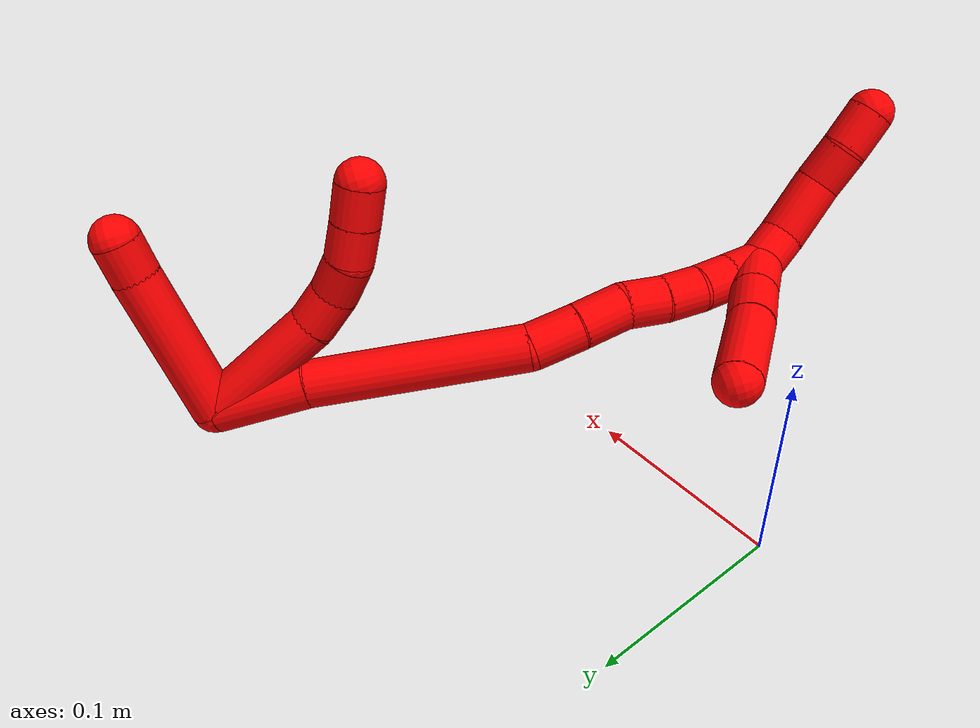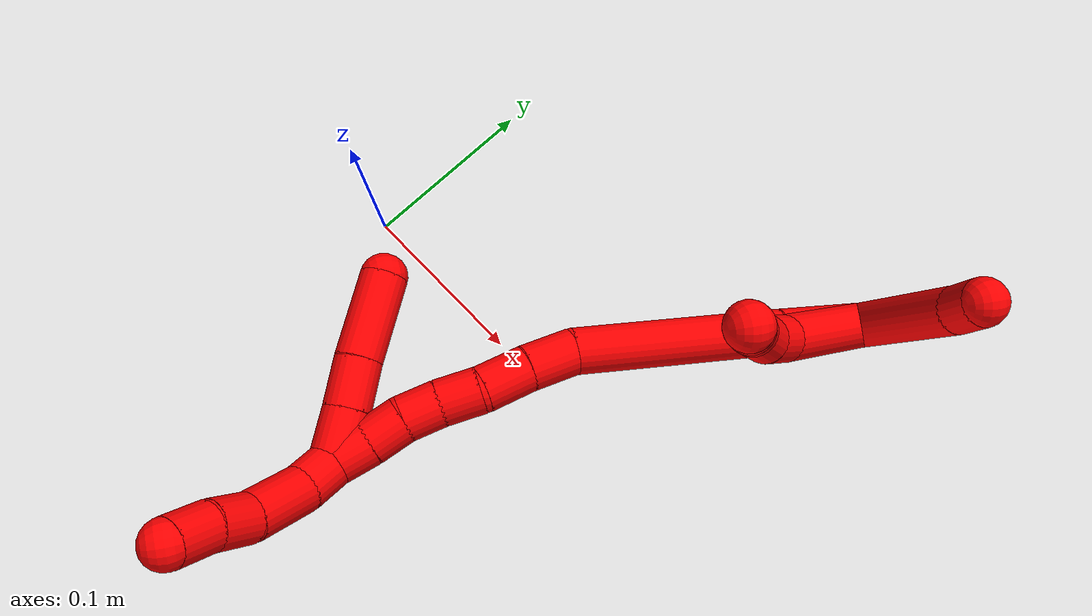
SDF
<sdf version="1.7">
 <world name="default">
  <model name="2">
   <static>0</static>
   <link name="2">
    <collision name="collision-cylinder-e_1_2_8">
     <pose>-0.010439 0.00869 -0.031183 -2.86981 -0.311944 1.71014</pose>
     <geometry><cylinder><radius>0.0125</radius><length>0.068026</length></cylinder></geometry>
     <surface>
      <friction><ode><mu>1.16</mu><mu2>1.16</mu2><slip1>0</slip1><slip2>0</slip2></ode></friction>
      <contact><ode><kp>1e+06</kp><kd>1</kd><max_vel>0</max_vel><min_depth>0.001</min_depth></ode></contact>
     </surface>
    </collision>
    <visual name="visual-cylinder-e_1_2_8">
     <pose>-0.010439 0.00869 -0.031183 -2.86981 -0.311944 1.71014</pose>
     <geometry><cylinder><radius>0.0125</radius><length>0.068026</length></cylinder></geometry>
     <material><ambient>1 0 0 1</ambient></material>
    </visual>
    <collision name="collision-cylinder-e_2_8_9">
     <pose>-0.025429 0.02194 -0.070787 -2.64534 -0.443654 1.45478</pose>
     <geometry><cylinder><radius>0.0125</radius><length>0.021205</length></cylinder></geometry>
     <surface>
      <friction><ode><mu>1.16</mu><mu2>1.16</mu2><slip1>0</slip1><slip2>0</slip2></ode></friction>
      <contact><ode><kp>1e+06</kp><kd>1</kd><max_vel>0</max_vel><min_depth>0.001</min_depth></ode></contact>
     </surface>
    </collision>
    <visual name="visual-cylinder-e_2_8_9">
     <pose>-0.025429 0.02194 -0.070787 -2.64534 -0.443654 1.45478</pose>
     <geometry><cylinder><radius>0.0125</radius><length>0.021205</length></cylinder></geometry>
     <material><ambient>1 0 0 1</ambient></material>
    </visual>
    <collision name="collision-cylinder-e_3_9_10">
     <pose>-0.034191 0.033112 -0.085799 -2.35446 -0.423749 0.955936</pose>
     <geometry><cylinder><radius>0.0125</radius><length>0.020484</length></cylinder></geometry>
     <surface>
      <friction><ode><mu>1.16</mu><mu2>1.16</mu2><slip1>0</slip1><slip2>0</slip2></ode></friction>
      <contact><ode><kp>1e+06</kp><kd>1</kd><max_vel>0</max_vel><min_depth>0.001</min_depth></ode></contact>
     </surface>
    </collision>
    <visual name="visual-cylinder-e_3_9_10">
     <pose>-0.034191 0.033112 -0.085799 -2.35446 -0.423749 0.955936</pose>
     <geometry><cylinder><radius>0.0125</radius><length>0.020484</length></cylinder></geometry>
     <material><ambient>1 0 0 1</ambient></material>
    </visual>
    <collision name="collision-cylinder-e_4_10_11">
     <pose>-0.044781 0.045738 -0.097229 -2.24859 -0.690639 1.2888</pose>
     <geometry><cylinder><radius>0.0125</radius><length>0.020027</length></cylinder></geometry>
     <surface>
      <friction><ode><mu>1.16</mu><mu2>1.16</mu2><slip1>0</slip1><slip2>0</slip2></ode></friction>
      <contact><ode><kp>1e+06</kp><kd>1</kd><max_vel>0</max_vel><min_depth>0.001</min_depth></ode></contact>
     </surface>
    </collision>
    <visual name="visual-cylinder-e_4_10_11">
     <pose>-0.044781 0.045738 -0.097229 -2.24859 -0.690639 1.2888</pose>
     <geometry><cylinder><radius>0.0125</radius><length>0.020027</length></cylinder></geometry>
     <material><ambient>1 0 0 1</ambient></material>
    </visual>
    <collision name="collision-cylinder-e_5_11_6">
     <pose>-0.057764 0.057938 -0.10662 -2.20493 -0.710155 1.26504</pose>
     <geometry><cylinder><radius>0.0125</radius><length>0.020258</length></cylinder></geometry>
     <surface>
      <friction><ode><mu>1.16</mu><mu2>1.16</mu2><slip1>0</slip1><slip2>0</slip2></ode></friction>
      <contact><ode><kp>1e+06</kp><kd>1</kd><max_vel>0</max_vel><min_depth>0.001</min_depth></ode></contact>
     </surface>
    </collision>
    <visual name="visual-cylinder-e_5_11_6">
     <pose>-0.057764 0.057938 -0.10662 -2.20493 -0.710155 1.26504</pose>
     <geometry><cylinder><radius>0.0125</radius><length>0.020258</length></cylinder></geometry>
     <material><ambient>1 0 0 1</ambient></material>
    </visual>
    <collision name="collision-cylinder-e_1_2_12">
     <pose>-0.03072 0.025048 0.0037 -1.42415 -0.881474 0.773273</pose>
     <geometry><cylinder><radius>0.0125</radius><length>0.079619</length></cylinder></geometry>
     <surface>
      <friction><ode><mu>1.16</mu><mu2>1.16</mu2><slip1>0</slip1><slip2>0</slip2></ode></friction>
      <contact><ode><kp>1e+06</kp><kd>1</kd><max_vel>0</max_vel><min_depth>0.001</min_depth></ode></contact>
     </surface>
    </collision>
    <visual name="visual-cylinder-e_1_2_12">
     <pose>-0.03072 0.025048 0.0037 -1.42415 -0.881474 0.773273</pose>
     <geometry><cylinder><radius>0.0125</radius><length>0.079619</length></cylinder></geometry>
     <material><ambient>1 0 0 1</ambient></material>
    </visual>
    <collision name="collision-cylinder-e_2_12_5">
     <pose>-0.06878 0.057162 0.007612 -1.54066 -0.804127 0.782645</pose>
     <geometry><cylinder><radius>0.0125</radius><length>0.020381</length></cylinder></geometry>
     <surface>
      <friction><ode><mu>1.16</mu><mu2>1.16</mu2><slip1>0</slip1><slip2>0</slip2></ode></friction>
      <contact><ode><kp>1e+06</kp><kd>1</kd><max_vel>0</max_vel><min_depth>0.001</min_depth></ode></contact>
     </surface>
    </collision>
    <visual name="visual-cylinder-e_2_12_5">
     <pose>-0.06878 0.057162 0.007612 -1.54066 -0.804127 0.782645</pose>
     <geometry><cylinder><radius>0.0125</radius><length>0.020381</length></cylinder></geometry>
     <material><ambient>1 0 0 1</ambient></material>
    </visual>
    <collision name="collision-cylinder-e_1_2_13">
     <pose>0.00175 0.001149 -0.024667 -3.09504 0.070753 -1.9778</pose>
     <geometry><cylinder><radius>0.0125</radius><length>0.049512</length></cylinder></geometry>
     <surface>
      <friction><ode><mu>1.16</mu><mu2>1.16</mu2><slip1>0</slip1><slip2>0</slip2></ode></friction>
      <contact><ode><kp>1e+06</kp><kd>1</kd><max_vel>0</max_vel><min_depth>0.001</min_depth></ode></contact>
     </surface>
    </collision>
    <visual name="visual-cylinder-e_1_2_13">
     <pose>0.00175 0.001149 -0.024667 -3.09504 0.070753 -1.9778</pose>
     <geometry><cylinder><radius>0.0125</radius><length>0.049512</length></cylinder></geometry>
     <material><ambient>1 0 0 1</ambient></material>
    </visual>
    <collision name="collision-cylinder-e_2_13_14">
     <pose>0.012193 0.000562 -0.105815 3.11086 0.152635 2.74496</pose>
     <geometry><cylinder><radius>0.0125</radius><length>0.114344</length></cylinder></geometry>
     <surface>
      <friction><ode><mu>1.16</mu><mu2>1.16</mu2><slip1>0</slip1><slip2>0</slip2></ode></friction>
      <contact><ode><kp>1e+06</kp><kd>1</kd><max_vel>0</max_vel><min_depth>0.001</min_depth></ode></contact>
     </surface>
    </collision>
    <visual name="visual-cylinder-e_2_13_14">
     <pose>0.012193 0.000562 -0.105815 3.11086 0.152635 2.74496</pose>
     <geometry><cylinder><radius>0.0125</radius><length>0.114344</length></cylinder></geometry>
     <material><ambient>1 0 0 1</ambient></material>
    </visual>
    <collision name="collision-cylinder-e_3_14_15">
     <pose>0.019272 -0.002987 -0.175643 3.0066 -0.119236 -1.44665</pose>
     <geometry><cylinder><radius>0.0125</radius><length>0.027133</length></cylinder></geometry>
     <surface>
      <friction><ode><mu>1.16</mu><mu2>1.16</mu2><slip1>0</slip1><slip2>0</slip2></ode></friction>
      <contact><ode><kp>1e+06</kp><kd>1</kd><max_vel>0</max_vel><min_depth>0.001</min_depth></ode></contact>
     </surface>
    </collision>
    <visual name="visual-cylinder-e_3_14_15">
     <pose>0.019272 -0.002987 -0.175643 3.0066 -0.119236 -1.44665</pose>
     <geometry><cylinder><radius>0.0125</radius><length>0.027133</length></cylinder></geometry>
     <material><ambient>1 0 0 1</ambient></material>
    </visual>
    <collision name="collision-cylinder-e_4_15_16">
     <pose>0.015518 -0.007414 -0.201692 2.93856 -0.163555 -1.35508</pose>
     <geometry><cylinder><radius>0.0125</radius><length>0.026286</length></cylinder></geometry>
     <surface>
      <friction><ode><mu>1.16</mu><mu2>1.16</mu2><slip1>0</slip1><slip2>0</slip2></ode></friction>
      <contact><ode><kp>1e+06</kp><kd>1</kd><max_vel>0</max_vel><min_depth>0.001</min_depth></ode></contact>
     </surface>
    </collision>
    <visual name="visual-cylinder-e_4_15_16">
     <pose>0.015518 -0.007414 -0.201692 2.93856 -0.163555 -1.35508</pose>
     <geometry><cylinder><radius>0.0125</radius><length>0.026286</length></cylinder></geometry>
     <material><ambient>1 0 0 1</ambient></material>
    </visual>
    <collision name="collision-cylinder-e_5_16_17">
     <pose>0.014368 -0.01285 -0.224998 2.88163 0.090046 0.663809</pose>
     <geometry><cylinder><radius>0.0125</radius><length>0.022035</length></cylinder></geometry>
     <surface>
      <friction><ode><mu>1.16</mu><mu2>1.16</mu2><slip1>0</slip1><slip2>0</slip2></ode></friction>
      <contact><ode><kp>1e+06</kp><kd>1</kd><max_vel>0</max_vel><min_depth>0.001</min_depth></ode></contact>
     </surface>
    </collision>
    <visual name="visual-cylinder-e_5_16_17">
     <pose>0.014368 -0.01285 -0.224998 2.88163 0.090046 0.663809</pose>
     <geometry><cylinder><radius>0.0125</radius><length>0.022035</length></cylinder></geometry>
     <material><ambient>1 0 0 1</ambient></material>
    </visual>
    <collision name="collision-cylinder-e_6_17_18">
     <pose>0.014969 -0.018398 -0.245301 2.86743 -0.038742 -0.279059</pose>
     <geometry><cylinder><radius>0.0125</radius><length>0.020164</length></cylinder></geometry>
     <surface>
      <friction><ode><mu>1.16</mu><mu2>1.16</mu2><slip1>0</slip1><slip2>0</slip2></ode></friction>
      <contact><ode><kp>1e+06</kp><kd>1</kd><max_vel>0</max_vel><min_depth>0.001</min_depth></ode></contact>
     </surface>
    </collision>
    <visual name="visual-cylinder-e_6_17_18">
     <pose>0.014969 -0.018398 -0.245301 2.86743 -0.038742 -0.279059</pose>
     <geometry><cylinder><radius>0.0125</radius><length>0.020164</length></cylinder></geometry>
     <material><ambient>1 0 0 1</ambient></material>
    </visual>
    <collision name="collision-cylinder-e_7_18_19">
     <pose>0.013057 -0.02527 -0.264015 2.71071 -0.152091 -0.670083</pose>
     <geometry><cylinder><radius>0.0125</radius><length>0.020079</length></cylinder></geometry>
     <surface>
      <friction><ode><mu>1.16</mu><mu2>1.16</mu2><slip1>0</slip1><slip2>0</slip2></ode></friction>
      <contact><ode><kp>1e+06</kp><kd>1</kd><max_vel>0</max_vel><min_depth>0.001</min_depth></ode></contact>
     </surface>
    </collision>
    <visual name="visual-cylinder-e_7_18_19">
     <pose>0.013057 -0.02527 -0.264015 2.71071 -0.152091 -0.670083</pose>
     <geometry><cylinder><radius>0.0125</radius><length>0.020079</length></cylinder></geometry>
     <material><ambient>1 0 0 1</ambient></material>
    </visual>
    <collision name="collision-cylinder-e_8_19_1">
     <pose>0.010142 -0.03273 -0.282602 2.80814 -0.136839 -0.773397</pose>
     <geometry><cylinder><radius>0.0125</radius><length>0.020447</length></cylinder></geometry>
     <surface>
      <friction><ode><mu>1.16</mu><mu2>1.16</mu2><slip1>0</slip1><slip2>0</slip2></ode></friction>
      <contact><ode><kp>1e+06</kp><kd>1</kd><max_vel>0</max_vel><min_depth>0.001</min_depth></ode></contact>
     </surface>
    </collision>
    <visual name="visual-cylinder-e_8_19_1">
     <pose>0.010142 -0.03273 -0.282602 2.80814 -0.136839 -0.773397</pose>
     <geometry><cylinder><radius>0.0125</radius><length>0.020447</length></cylinder></geometry>
     <material><ambient>1 0 0 1</ambient></material>
    </visual>
    <collision name="collision-cylinder-e_1_1_20">
     <pose>0.017588 -0.027629 -0.286649 -0.990031 0.72068 -0.401344</pose>
     <geometry><cylinder><radius>0.0125</radius><length>0.026795</length></cylinder></geometry>
     <surface>
      <friction><ode><mu>1.16</mu><mu2>1.16</mu2><slip1>0</slip1><slip2>0</slip2></ode></friction>
      <contact><ode><kp>1e+06</kp><kd>1</kd><max_vel>0</max_vel><min_depth>0.001</min_depth></ode></contact>
     </surface>
    </collision>
    <visual name="visual-cylinder-e_1_1_20">
     <pose>0.017588 -0.027629 -0.286649 -0.990031 0.72068 -0.401344</pose>
     <geometry><cylinder><radius>0.0125</radius><length>0.026795</length></cylinder></geometry>
     <material><ambient>1 0 0 1</ambient></material>
    </visual>
    <collision name="collision-cylinder-e_2_20_21">
     <pose>0.035314 -0.010661 -0.276026 -1.03307 0.728595 -0.426567</pose>
     <geometry><cylinder><radius>0.0125</radius><length>0.02669</length></cylinder></geometry>
     <surface>
      <friction><ode><mu>1.16</mu><mu2>1.16</mu2><slip1>0</slip1><slip2>0</slip2></ode></friction>
      <contact><ode><kp>1e+06</kp><kd>1</kd><max_vel>0</max_vel><min_depth>0.001</min_depth></ode></contact>
     </surface>
    </collision>
    <visual name="visual-cylinder-e_2_20_21">
     <pose>0.035314 -0.010661 -0.276026 -1.03307 0.728595 -0.426567</pose>
     <geometry><cylinder><radius>0.0125</radius><length>0.02669</length></cylinder></geometry>
     <material><ambient>1 0 0 1</ambient></material>
    </visual>
    <collision name="collision-cylinder-e_3_21_4">
     <pose>0.05939 0.012186 -0.26064 -0.9471 0.711702 -0.376412</pose>
     <geometry><cylinder><radius>0.0125</radius><length>0.046515</length></cylinder></geometry>
     <surface>
      <friction><ode><mu>1.16</mu><mu2>1.16</mu2><slip1>0</slip1><slip2>0</slip2></ode></friction>
      <contact><ode><kp>1e+06</kp><kd>1</kd><max_vel>0</max_vel><min_depth>0.001</min_depth></ode></contact>
     </surface>
    </collision>
    <visual name="visual-cylinder-e_3_21_4">
     <pose>0.05939 0.012186 -0.26064 -0.9471 0.711702 -0.376412</pose>
     <geometry><cylinder><radius>0.0125</radius><length>0.046515</length></cylinder></geometry>
     <material><ambient>1 0 0 1</ambient></material>
    </visual>
    <collision name="collision-cylinder-e_1_1_22">
     <pose>0.002855 -0.037272 -0.300707 2.99881 -0.599411 -2.68675</pose>
     <geometry><cylinder><radius>0.0125</radius><length>0.020888</length></cylinder></geometry>
     <surface>
      <friction><ode><mu>1.16</mu><mu2>1.16</mu2><slip1>0</slip1><slip2>0</slip2></ode></friction>
      <contact><ode><kp>1e+06</kp><kd>1</kd><max_vel>0</max_vel><min_depth>0.001</min_depth></ode></contact>
     </surface>
    </collision>
    <visual name="visual-cylinder-e_1_1_22">
     <pose>0.002855 -0.037272 -0.300707 2.99881 -0.599411 -2.68675</pose>
     <geometry><cylinder><radius>0.0125</radius><length>0.020888</length></cylinder></geometry>
     <material><ambient>1 0 0 1</ambient></material>
    </visual>
    <collision name="collision-cylinder-e_2_22_23">
     <pose>-0.012915 -0.035191 -0.322652 -2.89975 -0.62088 2.41744</pose>
     <geometry><cylinder><radius>0.0125</radius><length>0.033961</length></cylinder></geometry>
     <surface>
      <friction><ode><mu>1.16</mu><mu2>1.16</mu2><slip1>0</slip1><slip2>0</slip2></ode></friction>
      <contact><ode><kp>1e+06</kp><kd>1</kd><max_vel>0</max_vel><min_depth>0.001</min_depth></ode></contact>
     </surface>
    </collision>
    <visual name="visual-cylinder-e_2_22_23">
     <pose>-0.012915 -0.035191 -0.322652 -2.89975 -0.62088 2.41744</pose>
     <geometry><cylinder><radius>0.0125</radius><length>0.033961</length></cylinder></geometry>
     <material><ambient>1 0 0 1</ambient></material>
    </visual>
    <collision name="collision-cylinder-e_3_23_24">
     <pose>-0.028022 -0.027008 -0.344691 -2.62733 -0.485364 1.51052</pose>
     <geometry><cylinder><radius>0.0125</radius><length>0.022413</length></cylinder></geometry>
     <surface>
      <friction><ode><mu>1.16</mu><mu2>1.16</mu2><slip1>0</slip1><slip2>0</slip2></ode></friction>
      <contact><ode><kp>1e+06</kp><kd>1</kd><max_vel>0</max_vel><min_depth>0.001</min_depth></ode></contact>
     </surface>
    </collision>
    <visual name="visual-cylinder-e_3_23_24">
     <pose>-0.028022 -0.027008 -0.344691 -2.62733 -0.485364 1.51052</pose>
     <geometry><cylinder><radius>0.0125</radius><length>0.022413</length></cylinder></geometry>
     <material><ambient>1 0 0 1</ambient></material>
    </visual>
    <collision name="collision-cylinder-e_4_24_3">
     <pose>-0.03947 -0.018851 -0.362255 -2.78966 -0.578843 2.06502</pose>
     <geometry><cylinder><radius>0.0125</radius><length>0.022739</length></cylinder></geometry>
     <surface>
      <friction><ode><mu>1.16</mu><mu2>1.16</mu2><slip1>0</slip1><slip2>0</slip2></ode></friction>
      <contact><ode><kp>1e+06</kp><kd>1</kd><max_vel>0</max_vel><min_depth>0.001</min_depth></ode></contact>
     </surface>
    </collision>
    <visual name="visual-cylinder-e_4_24_3">
     <pose>-0.03947 -0.018851 -0.362255 -2.78966 -0.578843 2.06502</pose>
     <geometry><cylinder><radius>0.0125</radius><length>0.022739</length></cylinder></geometry>
     <material><ambient>1 0 0 1</ambient></material>
    </visual>
    <collision name="collision-sphere-3">
     <pose>-0.045689 -0.015571 -0.371189 0 -0 0</pose>
     <geometry><sphere><radius>0.0125</radius></sphere></geometry>
     <surface>
      <friction><ode><mu>1.16</mu><mu2>1.16</mu2><slip1>0</slip1><slip2>0</slip2></ode></friction>
      <contact><ode><kp>1e+06</kp><kd>1</kd><max_vel>0</max_vel><min_depth>0.001</min_depth></ode></contact>
     </surface>
    </collision>
    <visual name="visual-sphere-3">
     <pose>-0.045689 -0.015571 -0.371189 0 -0 0</pose>
     <geometry><sphere><radius>0.0125</radius></sphere></geometry>
     <material><ambient>1 0 0 1</ambient></material>
    </visual>
    <collision name="collision-sphere-24">
     <pose>-0.03325 -0.022132 -0.353321 0 -0 0</pose>
     <geometry><sphere><radius>0.0125</radius></sphere></geometry>
     <surface>
      <friction><ode><mu>1.16</mu><mu2>1.16</mu2><slip1>0</slip1><slip2>0</slip2></ode></friction>
      <contact><ode><kp>1e+06</kp><kd>1</kd><max_vel>0</max_vel><min_depth>0.001</min_depth></ode></contact>
     </surface>
    </collision>
    <visual name="visual-sphere-24">
     <pose>-0.03325 -0.022132 -0.353321 0 -0 0</pose>
     <geometry><sphere><radius>0.0125</radius></sphere></geometry>
     <material><ambient>1 0 0 1</ambient></material>
    </visual>
    <collision name="collision-sphere-23">
     <pose>-0.022794 -0.031883 -0.336061 0 -0 0</pose>
     <geometry><sphere><radius>0.0125</radius></sphere></geometry>
     <surface>
      <friction><ode><mu>1.16</mu><mu2>1.16</mu2><slip1>0</slip1><slip2>0</slip2></ode></friction>
      <contact><ode><kp>1e+06</kp><kd>1</kd><max_vel>0</max_vel><min_depth>0.001</min_depth></ode></contact>
     </surface>
    </collision>
    <visual name="visual-sphere-23">
     <pose>-0.022794 -0.031883 -0.336061 0 -0 0</pose>
     <geometry><sphere><radius>0.0125</radius></sphere></geometry>
     <material><ambient>1 0 0 1</ambient></material>
    </visual>
    <collision name="collision-sphere-22">
     <pose>-0.003037 -0.038499 -0.309242 0 -0 0</pose>
     <geometry><sphere><radius>0.0125</radius></sphere></geometry>
     <surface>
      <friction><ode><mu>1.16</mu><mu2>1.16</mu2><slip1>0</slip1><slip2>0</slip2></ode></friction>
      <contact><ode><kp>1e+06</kp><kd>1</kd><max_vel>0</max_vel><min_depth>0.001</min_depth></ode></contact>
     </surface>
    </collision>
    <visual name="visual-sphere-22">
     <pose>-0.003037 -0.038499 -0.309242 0 -0 0</pose>
     <geometry><sphere><radius>0.0125</radius></sphere></geometry>
     <material><ambient>1 0 0 1</ambient></material>
    </visual>
    <collision name="collision-sphere-4">
     <pose>0.07458 0.026482 -0.250354 0 -0 0</pose>
     <geometry><sphere><radius>0.0125</radius></sphere></geometry>
     <surface>
      <friction><ode><mu>1.16</mu><mu2>1.16</mu2><slip1>0</slip1><slip2>0</slip2></ode></friction>
      <contact><ode><kp>1e+06</kp><kd>1</kd><max_vel>0</max_vel><min_depth>0.001</min_depth></ode></contact>
     </surface>
    </collision>
    <visual name="visual-sphere-4">
     <pose>0.07458 0.026482 -0.250354 0 -0 0</pose>
     <geometry><sphere><radius>0.0125</radius></sphere></geometry>
     <material><ambient>1 0 0 1</ambient></material>
    </visual>
    <collision name="collision-sphere-21">
     <pose>0.0442 -0.00211 -0.270926 0 -0 0</pose>
     <geometry><sphere><radius>0.0125</radius></sphere></geometry>
     <surface>
      <friction><ode><mu>1.16</mu><mu2>1.16</mu2><slip1>0</slip1><slip2>0</slip2></ode></friction>
      <contact><ode><kp>1e+06</kp><kd>1</kd><max_vel>0</max_vel><min_depth>0.001</min_depth></ode></contact>
     </surface>
    </collision>
    <visual name="visual-sphere-21">
     <pose>0.0442 -0.00211 -0.270926 0 -0 0</pose>
     <geometry><sphere><radius>0.0125</radius></sphere></geometry>
     <material><ambient>1 0 0 1</ambient></material>
    </visual>
    <collision name="collision-sphere-20">
     <pose>0.026429 -0.019213 -0.281125 0 -0 0</pose>
     <geometry><sphere><radius>0.0125</radius></sphere></geometry>
     <surface>
      <friction><ode><mu>1.16</mu><mu2>1.16</mu2><slip1>0</slip1><slip2>0</slip2></ode></friction>
      <contact><ode><kp>1e+06</kp><kd>1</kd><max_vel>0</max_vel><min_depth>0.001</min_depth></ode></contact>
     </surface>
    </collision>
    <visual name="visual-sphere-20">
     <pose>0.026429 -0.019213 -0.281125 0 -0 0</pose>
     <geometry><sphere><radius>0.0125</radius></sphere></geometry>
     <material><ambient>1 0 0 1</ambient></material>
    </visual>
    <collision name="collision-sphere-6">
     <pose>-0.064367 0.064125 -0.11117 0 -0 0</pose>
     <geometry><sphere><radius>0.0125</radius></sphere></geometry>
     <surface>
      <friction><ode><mu>1.16</mu><mu2>1.16</mu2><slip1>0</slip1><slip2>0</slip2></ode></friction>
      <contact><ode><kp>1e+06</kp><kd>1</kd><max_vel>0</max_vel><min_depth>0.001</min_depth></ode></contact>
     </surface>
    </collision>
    <visual name="visual-sphere-6">
     <pose>-0.064367 0.064125 -0.11117 0 -0 0</pose>
     <geometry><sphere><radius>0.0125</radius></sphere></geometry>
     <material><ambient>1 0 0 1</ambient></material>
    </visual>
    <collision name="collision-sphere-11">
     <pose>-0.05116 0.051751 -0.102069 0 -0 0</pose>
     <geometry><sphere><radius>0.0125</radius></sphere></geometry>
     <surface>
      <friction><ode><mu>1.16</mu><mu2>1.16</mu2><slip1>0</slip1><slip2>0</slip2></ode></friction>
      <contact><ode><kp>1e+06</kp><kd>1</kd><max_vel>0</max_vel><min_depth>0.001</min_depth></ode></contact>
     </surface>
    </collision>
    <visual name="visual-sphere-11">
     <pose>-0.05116 0.051751 -0.102069 0 -0 0</pose>
     <geometry><sphere><radius>0.0125</radius></sphere></geometry>
     <material><ambient>1 0 0 1</ambient></material>
    </visual>
    <collision name="collision-sphere-10">
     <pose>-0.038403 0.039726 -0.092389 0 -0 0</pose>
     <geometry><sphere><radius>0.0125</radius></sphere></geometry>
     <surface>
      <friction><ode><mu>1.16</mu><mu2>1.16</mu2><slip1>0</slip1><slip2>0</slip2></ode></friction>
      <contact><ode><kp>1e+06</kp><kd>1</kd><max_vel>0</max_vel><min_depth>0.001</min_depth></ode></contact>
     </surface>
    </collision>
    <visual name="visual-sphere-10">
     <pose>-0.038403 0.039726 -0.092389 0 -0 0</pose>
     <geometry><sphere><radius>0.0125</radius></sphere></geometry>
     <material><ambient>1 0 0 1</ambient></material>
    </visual>
    <collision name="collision-sphere-9">
     <pose>-0.02998 0.026499 -0.079208 0 -0 0</pose>
     <geometry><sphere><radius>0.0125</radius></sphere></geometry>
     <surface>
      <friction><ode><mu>1.16</mu><mu2>1.16</mu2><slip1>0</slip1><slip2>0</slip2></ode></friction>
      <contact><ode><kp>1e+06</kp><kd>1</kd><max_vel>0</max_vel><min_depth>0.001</min_depth></ode></contact>
     </surface>
    </collision>
    <visual name="visual-sphere-9">
     <pose>-0.02998 0.026499 -0.079208 0 -0 0</pose>
     <geometry><sphere><radius>0.0125</radius></sphere></geometry>
     <material><ambient>1 0 0 1</ambient></material>
    </visual>
    <collision name="collision-sphere-2">
     <geometry><sphere><radius>0.0125</radius></sphere></geometry>
     <surface>
      <friction><ode><mu>1.16</mu><mu2>1.16</mu2><slip1>0</slip1><slip2>0</slip2></ode></friction>
      <contact><ode><kp>1e+06</kp><kd>1</kd><max_vel>0</max_vel><min_depth>0.001</min_depth></ode></contact>
     </surface>
    </collision>
    <visual name="visual-sphere-2">
     <geometry><sphere><radius>0.0125</radius></sphere></geometry>
     <material><ambient>1 0 0 1</ambient></material>
    </visual>
    <collision name="collision-sphere-19">
     <pose>0.011536 -0.029415 -0.273032 0 -0 0</pose>
     <geometry><sphere><radius>0.0125</radius></sphere></geometry>
     <surface>
      <friction><ode><mu>1.16</mu><mu2>1.16</mu2><slip1>0</slip1><slip2>0</slip2></ode></friction>
      <contact><ode><kp>1e+06</kp><kd>1</kd><max_vel>0</max_vel><min_depth>0.001</min_depth></ode></contact>
     </surface>
    </collision>
    <visual name="visual-sphere-19">
     <pose>0.011536 -0.029415 -0.273032 0 -0 0</pose>
     <geometry><sphere><radius>0.0125</radius></sphere></geometry>
     <material><ambient>1 0 0 1</ambient></material>
    </visual>
    <collision name="collision-sphere-8">
     <pose>-0.020878 0.01738 -0.062367 0 -0 0</pose>
     <geometry><sphere><radius>0.0125</radius></sphere></geometry>
     <surface>
      <friction><ode><mu>1.16</mu><mu2>1.16</mu2><slip1>0</slip1><slip2>0</slip2></ode></friction>
      <contact><ode><kp>1e+06</kp><kd>1</kd><max_vel>0</max_vel><min_depth>0.001</min_depth></ode></contact>
     </surface>
    </collision>
    <visual name="visual-sphere-8">
     <pose>-0.020878 0.01738 -0.062367 0 -0 0</pose>
     <geometry><sphere><radius>0.0125</radius></sphere></geometry>
     <material><ambient>1 0 0 1</ambient></material>
    </visual>
    <collision name="collision-sphere-12">
     <pose>-0.06144 0.050095 0.007399 0 -0 0</pose>
     <geometry><sphere><radius>0.0125</radius></sphere></geometry>
     <surface>
      <friction><ode><mu>1.16</mu><mu2>1.16</mu2><slip1>0</slip1><slip2>0</slip2></ode></friction>
      <contact><ode><kp>1e+06</kp><kd>1</kd><max_vel>0</max_vel><min_depth>0.001</min_depth></ode></contact>
     </surface>
    </collision>
    <visual name="visual-sphere-12">
     <pose>-0.06144 0.050095 0.007399 0 -0 0</pose>
     <geometry><sphere><radius>0.0125</radius></sphere></geometry>
     <material><ambient>1 0 0 1</ambient></material>
    </visual>
    <collision name="collision-sphere-5">
     <pose>-0.076119 0.064228 0.007825 0 -0 0</pose>
     <geometry><sphere><radius>0.0125</radius></sphere></geometry>
     <surface>
      <friction><ode><mu>1.16</mu><mu2>1.16</mu2><slip1>0</slip1><slip2>0</slip2></ode></friction>
      <contact><ode><kp>1e+06</kp><kd>1</kd><max_vel>0</max_vel><min_depth>0.001</min_depth></ode></contact>
     </surface>
    </collision>
    <visual name="visual-sphere-5">
     <pose>-0.076119 0.064228 0.007825 0 -0 0</pose>
     <geometry><sphere><radius>0.0125</radius></sphere></geometry>
     <material><ambient>1 0 0 1</ambient></material>
    </visual>
    <collision name="collision-sphere-13">
     <pose>0.0035 0.002299 -0.049335 0 -0 0</pose>
     <geometry><sphere><radius>0.0125</radius></sphere></geometry>
     <surface>
      <friction><ode><mu>1.16</mu><mu2>1.16</mu2><slip1>0</slip1><slip2>0</slip2></ode></friction>
      <contact><ode><kp>1e+06</kp><kd>1</kd><max_vel>0</max_vel><min_depth>0.001</min_depth></ode></contact>
     </surface>
    </collision>
    <visual name="visual-sphere-13">
     <pose>0.0035 0.002299 -0.049335 0 -0 0</pose>
     <geometry><sphere><radius>0.0125</radius></sphere></geometry>
     <material><ambient>1 0 0 1</ambient></material>
    </visual>
    <collision name="collision-sphere-14">
     <pose>0.020885 -0.001174 -0.162296 0 -0 0</pose>
     <geometry><sphere><radius>0.0125</radius></sphere></geometry>
     <surface>
      <friction><ode><mu>1.16</mu><mu2>1.16</mu2><slip1>0</slip1><slip2>0</slip2></ode></friction>
      <contact><ode><kp>1e+06</kp><kd>1</kd><max_vel>0</max_vel><min_depth>0.001</min_depth></ode></contact>
     </surface>
    </collision>
    <visual name="visual-sphere-14">
     <pose>0.020885 -0.001174 -0.162296 0 -0 0</pose>
     <geometry><sphere><radius>0.0125</radius></sphere></geometry>
     <material><ambient>1 0 0 1</ambient></material>
    </visual>
    <collision name="collision-sphere-15">
     <pose>0.017658 -0.0048 -0.188991 0 -0 0</pose>
     <geometry><sphere><radius>0.0125</radius></sphere></geometry>
     <surface>
      <friction><ode><mu>1.16</mu><mu2>1.16</mu2><slip1>0</slip1><slip2>0</slip2></ode></friction>
      <contact><ode><kp>1e+06</kp><kd>1</kd><max_vel>0</max_vel><min_depth>0.001</min_depth></ode></contact>
     </surface>
    </collision>
    <visual name="visual-sphere-15">
     <pose>0.017658 -0.0048 -0.188991 0 -0 0</pose>
     <geometry><sphere><radius>0.0125</radius></sphere></geometry>
     <material><ambient>1 0 0 1</ambient></material>
    </visual>
    <collision name="collision-sphere-16">
     <pose>0.013378 -0.010029 -0.214394 0 -0 0</pose>
     <geometry><sphere><radius>0.0125</radius></sphere></geometry>
     <surface>
      <friction><ode><mu>1.16</mu><mu2>1.16</mu2><slip1>0</slip1><slip2>0</slip2></ode></friction>
      <contact><ode><kp>1e+06</kp><kd>1</kd><max_vel>0</max_vel><min_depth>0.001</min_depth></ode></contact>
     </surface>
    </collision>
    <visual name="visual-sphere-16">
     <pose>0.013378 -0.010029 -0.214394 0 -0 0</pose>
     <geometry><sphere><radius>0.0125</radius></sphere></geometry>
     <material><ambient>1 0 0 1</ambient></material>
    </visual>
    <collision name="collision-sphere-17">
     <pose>0.015359 -0.01567 -0.235602 0 -0 0</pose>
     <geometry><sphere><radius>0.0125</radius></sphere></geometry>
     <surface>
      <friction><ode><mu>1.16</mu><mu2>1.16</mu2><slip1>0</slip1><slip2>0</slip2></ode></friction>
      <contact><ode><kp>1e+06</kp><kd>1</kd><max_vel>0</max_vel><min_depth>0.001</min_depth></ode></contact>
     </surface>
    </collision>
    <visual name="visual-sphere-17">
     <pose>0.015359 -0.01567 -0.235602 0 -0 0</pose>
     <geometry><sphere><radius>0.0125</radius></sphere></geometry>
     <material><ambient>1 0 0 1</ambient></material>
    </visual>
    <collision name="collision-sphere-18">
     <pose>0.014578 -0.021126 -0.254999 0 -0 0</pose>
     <geometry><sphere><radius>0.0125</radius></sphere></geometry>
     <surface>
      <friction><ode><mu>1.16</mu><mu2>1.16</mu2><slip1>0</slip1><slip2>0</slip2></ode></friction>
      <contact><ode><kp>1e+06</kp><kd>1</kd><max_vel>0</max_vel><min_depth>0.001</min_depth></ode></contact>
     </surface>
    </collision>
    <visual name="visual-sphere-18">
     <pose>0.014578 -0.021126 -0.254999 0 -0 0</pose>
     <geometry><sphere><radius>0.0125</radius></sphere></geometry>
     <material><ambient>1 0 0 1</ambient></material>
    </visual>
    <collision name="collision-sphere-1">
     <pose>0.008747 -0.036045 -0.292172 0 -0 0</pose>
     <geometry><sphere><radius>0.0125</radius></sphere></geometry>
     <surface>
      <friction><ode><mu>1.16</mu><mu2>1.16</mu2><slip1>0</slip1><slip2>0</slip2></ode></friction>
      <contact><ode><kp>1e+06</kp><kd>1</kd><max_vel>0</max_vel><min_depth>0.001</min_depth></ode></contact>
     </surface>
    </collision>
    <visual name="visual-sphere-1">
     <pose>0.008747 -0.036045 -0.292172 0 -0 0</pose>
     <geometry><sphere><radius>0.0125</radius></sphere></geometry>
     <material><ambient>1 0 0 1</ambient></material>
    </visual>
    <inertial>
     <pose>-0.002791 0.002043 -0.151709 0 -0 0</pose>
     <mass>0.75</mass>
     <inertia>
      <ixx>-1.6e-05</ixx>
      <ixy>0</ixy>
      <ixz>0</ixz>
      <iyy>0.000272</iyy>
      <iyz>0</iyz>
      <izz>-5.6e-05</izz>
     </inertia>
    </inertial>
   </link>
   <pose>0.234432 0.149982 0.012465 1.87854 0.581066 2.79664</pose>
  </model>
 </world>
</sdf>
